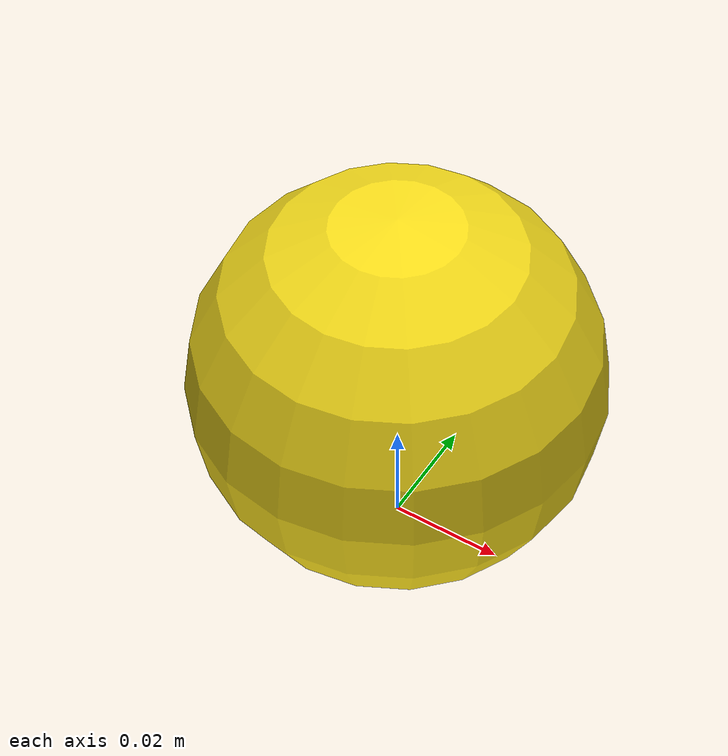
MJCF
<mujoco model="ball">
  <!-- 70 mm rubber ball, 0.15 kg. Rolls: the hard case for a grasp policy.
       Origin at the bottom centre. Self-authored primitive (CC0). -->
  <asset>
    <material name="mat" rgba="0.95 0.85 0.1 1"/>
  </asset>
  <worldbody>
    <body name="ball">
      <freejoint/>
      <geom name="body" type="sphere" size="0.035" pos="0 0 0.035" mass="0.15"
            material="mat" condim="4" friction="1.0 0.02 0.0005" solimp="0.95 0.99 0.001" solref="0.008 1"/>
    </body>
  </worldbody>
</mujoco>
